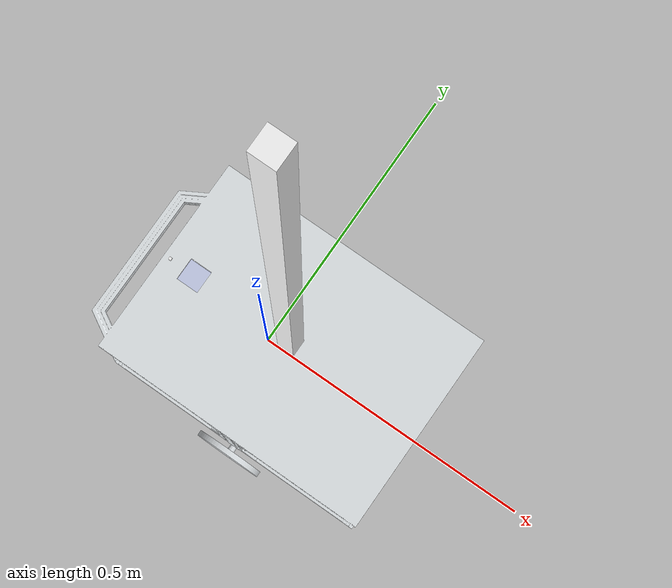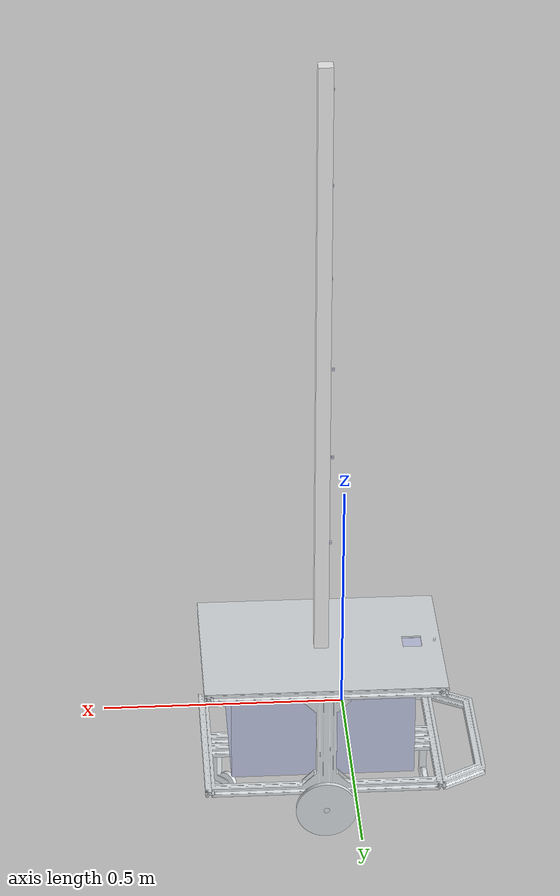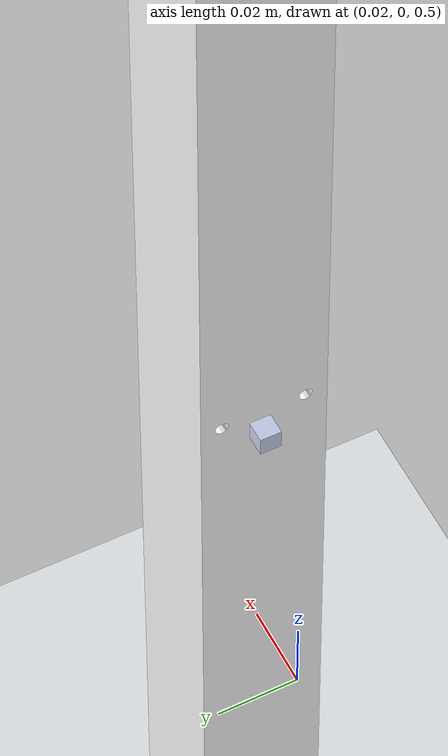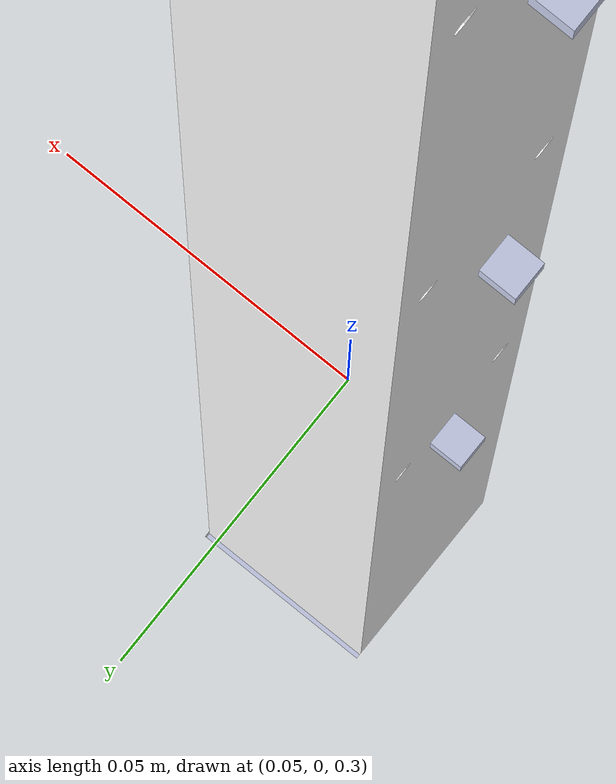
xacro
<?xml version='1.0'?>

<robot name="GazeboV1" xmlns:xacro="http://www.ros.org/wiki/xacro" >

  <xacro:include filename="$(find GazeboV0)/urdf/UVbot.gazebo" />
  <xacro:include filename="$(find GazeboV0)/urdf/macros.xacro" />
  <xacro:include filename="$(find GazeboV0)/urdf/materials.xacro" />

  <link name="Chassis">
    <inertial>
      <origin
        xyz="-0.033283 0.045332 0.0039241"
        rpy="0 0 0" />
      <mass
        value="4.7117" />
      <inertia
        ixx="0.13123"
        ixy="0.0096599"
        ixz="-5.9961E-08"
        iyy="0.19541"
        iyz="-6.4526E-06"
        izz="0.18347" />
    </inertial>
    <visual>
      <origin
        xyz="0 0 0"
        rpy="0 0 3.1415" />
      <geometry>
        <mesh
          filename="package://GazeboV0/meshes/Chassis.STL" />
      </geometry>
      <material
        name="">
        <color
          rgba="0.89804 0.91765 0.92941 1" />
      </material>
    </visual>
    <collision>
      <origin
        xyz="0 0 0"
        rpy="0 0 0" />
      <geometry>
        <mesh
          filename="package://GazeboV0/meshes/Chassis.STL" />
      </geometry>
    </collision>
  </link>

  <link name="RightWheel">
    <inertial>
      <origin
        xyz="-5.5511E-17 -9.7145E-17 0.0051"
        rpy="0 0 0" />
      <mass
        value="0.33861" />
      <inertia
        ixx="0.00034758"
        ixy="-1.3553E-20"
        ixz="-3.2653E-18"
        iyy="0.00034758"
        iyz="-7.9542E-18"
        izz="0.00068952" />
    </inertial>
    <visual>
      <origin
        xyz="0 0 0"
        rpy="0 0 0" />
      <geometry>
        <mesh
          filename="package://GazeboV0/meshes/RightWheel.STL" />
      </geometry>
      <material
        name="">
        <color
          rgba="0.89804 0.91765 0.92941 1" />
      </material>
    </visual>
    <collision>
      <origin
        xyz="0 0 0"
        rpy="0 0 0" />
      <geometry>
        <mesh
          filename="package://GazeboV0/meshes/RightWheel.STL" />
      </geometry>
    </collision>
  </link>

  <joint name="RightRevolute" type="continuous">
    <origin
      xyz="0.046488 -0.18625 -0.13626"
      rpy="1.5708 -0.54973 0" />
    <parent
      link="Chassis" />
    <child
      link="RightWheel" />
    <axis
      xyz="0 0 1" />
    <dynamics
      damping="0.01"
      friction="0.01" />
  </joint>

  <link name="LeftWheel">
    <inertial>
      <origin
        xyz="-6.9389E-17 1.1102E-16 -0.0051"
        rpy="0 0 0" />
      <mass
        value="0.33861" />
      <inertia
        ixx="0.00034758"
        ixy="-2.7105E-20"
        ixz="4.7021E-18"
        iyy="0.00034758"
        iyz="-7.2526E-18"
        izz="0.00068952" />
    </inertial>
    <visual>
      <origin
        xyz="0 0 0"
        rpy="0 0 0" />
      <geometry>
        <mesh
          filename="package://GazeboV0/meshes/LeftWheel.STL" />
      </geometry>
      <material
        name="">
        <color
          rgba="0.89804 0.91765 0.92941 1" />
      </material>
    </visual>
    <collision>
      <origin
        xyz="0 0 0"
        rpy="0 0 0" />
      <geometry>
        <mesh
          filename="package://GazeboV0/meshes/LeftWheel.STL" />
      </geometry>
    </collision>
  </link>

  <joint name="LeftRevolute" type="continuous">
    <origin
      xyz="0.046488 0.19325 -0.13626"
      rpy="1.5708 0.4158 0" />
    <parent
      link="Chassis" />
    <child
      link="LeftWheel" />
    <axis
      xyz="0 0 1" />
    <dynamics
      damping="0.01"
      friction="0.01" />
  </joint>

  <link
    name="FrontCastor">
    <inertial>
      <origin
        xyz="0.00303144893180381 0.0345627416364458 -2.77555756156289E-16"
        rpy="0 0 0" />
      <mass
        value="0.0671525104446695" />
      <inertia
        ixx="4.49259698602968E-05"
        ixy="-6.70501812216222E-06"
        ixz="6.63862072410558E-20"
        iyy="9.61913985679314E-06"
        iyz="3.54456818646323E-19"
        izz="4.97992078191437E-05" />
    </inertial>
    <visual>
      <origin
        xyz="0 0 0"
        rpy="0 0 0" />
      <geometry>
        <mesh
          filename="package://GazeboV0/meshes/FrontCastor.STL" />
      </geometry>
      <material
        name="">
        <color
          rgba="0.898039215686275 0.917647058823529 0.929411764705882 1" />
      </material>
    </visual>
    <collision>
      <origin
        xyz="0 0 0"
        rpy="0 0 0" />
      <geometry>
        <mesh
          filename="package://GazeboV0/meshes/FrontCastor.STL" />
      </geometry>
    </collision>
  </link>

  <joint name="FrontCastorRevolute" type="continuous">
    <origin
      xyz="-0.17264 0.0000 -0.11126"
      rpy="-1.5708 0 1.5956" />
    <parent
      link="Chassis" />
    <child
      link="FrontCastor" />
    <axis
      xyz="0 1 0" />
    <dynamics
      damping="0.01"
      friction="0.01" />
  </joint>

  <link name="FrontCastorWheel">
    <inertial>
      <origin
        xyz="-2.77555756156289E-17 0 -6.66133814775094E-16"
        rpy="0 0 0" />
      <mass
        value="0.0317645176567402" />
      <inertia
        ixx="3.91504603938205E-06"
        ixy="8.470329472543E-22"
        ixz="2.13743470283702E-21"
        iyy="3.91504603938204E-06"
        iyz="-3.61974236053205E-21"
        izz="7.40108172021949E-06" />
    </inertial>
    <visual>
      <origin
        xyz="0 0 0"
        rpy="0 0 0" />
      <geometry>
        <mesh
          filename="package://GazeboV0/meshes/FrontCastorWheel.STL" />
      </geometry>
      <material
        name="">
        <color
          rgba="0.898039215686275 0.917647058823529 0.929411764705882 1" />
      </material>
    </visual>
    <collision>
      <origin
        xyz="0 0 0"
        rpy="0 0 0" />
      <geometry>
        <mesh
          filename="package://GazeboV0/meshes/FrontCastorWheel.STL" />
      </geometry>
    </collision>
  </link>

  <joint
    name="FrontCastorWheelRevolute"
    type="continuous">
    <origin
      xyz="0.032 0.0675 0"
      rpy="0 0 1.984" />
    <parent
      link="FrontCastor" />
    <child
      link="FrontCastorWheel" />
    <axis
      xyz="0 0 1" />
    <dynamics
      damping="0.01"
      friction="0.01" />
  </joint>

  <link
    name="RearCastor">
    <inertial>
      <origin
        xyz="0.0030314489318026 0.0345627416364456 -1.69309011255336E-15"
        rpy="0 0 0" />
      <mass
        value="0.0671525104446697" />
      <inertia
        ixx="4.49259698602974E-05"
        ixy="-6.70501812216103E-06"
        ixz="3.16790322273108E-19"
        iyy="9.61913985679272E-06"
        iyz="1.94228764612286E-18"
        izz="4.97992078191438E-05" />
    </inertial>
    <visual>
      <origin
        xyz="0 0 0"
        rpy="0 0 0" />
      <geometry>
        <mesh
          filename="package://GazeboV0/meshes/RearCastor.STL" />
      </geometry>
      <material
        name="">
        <color
          rgba="0.898039215686275 0.917647058823529 0.929411764705882 1" />
      </material>
    </visual>
    <collision>
      <origin
        xyz="0 0 0"
        rpy="0 0 0" />
      <geometry>
        <mesh
          filename="package://GazeboV0/meshes/RearCastor.STL" />
      </geometry>
    </collision>
  </link>

  <joint
    name="RearCastorRevolute"
    type="continuous">
    <origin
      xyz="0.26561 0.0 -0.11126"
      rpy="-1.5708 0 2.3562" />
    <parent
      link="Chassis" />
    <child
      link="RearCastor" />
    <axis
      xyz="0 1 0" />
    <dynamics
      damping="0.01"
      friction="0.01" />
  </joint>
  <link
    name="RearCastorWheel">
    <inertial>
      <origin
        xyz="0 -2.77555756156289E-17 5.55111512312578E-17"
        rpy="0 0 0" />
      <mass
        value="0.0317645176567403" />
      <inertia
        ixx="3.91504603938205E-06"
        ixy="1.05879118406788E-22"
        ixz="5.18807680193259E-21"
        iyy="3.91504603938205E-06"
        iyz="-3.70576914423756E-22"
        izz="7.4010817202195E-06" />
    </inertial>
    <visual>
      <origin
        xyz="0 0 0"
        rpy="0 0 0" />
      <geometry>
        <mesh
          filename="package://GazeboV0/meshes/RearCastorWheel.STL" />
      </geometry>
      <material
        name="">
        <color
          rgba="0.898039215686275 0.917647058823529 0.929411764705882 1" />
      </material>
    </visual>
    <collision>
      <origin
        xyz="0 0 0"
        rpy="0 0 0" />
      <geometry>
        <mesh
          filename="package://GazeboV0/meshes/RearCastorWheel.STL" />
      </geometry>
    </collision>
  </link>

  <joint
    name="RearCastorWheelRevolute"
    type="continuous">
    <origin
      xyz="0.032 0.0675 0"
      rpy="0 0 0.34434" />
    <parent
      link="RearCastor" />
    <child
      link="RearCastorWheel" />
    <axis
      xyz="0 0 1" />
    <dynamics
      damping="0.01"
      friction="0.01" />
  </joint>

  <link
    name="Battery">
    <inertial>
      <origin
        xyz="9.99200722162641E-16 0.0925 -3.25260651745651E-17"
        rpy="0 0 0" />
      <mass
        value="17.512433" />
      <inertia
        ixx="0.172679886227083"
        ixy="1.71151070449169E-15"
        ixz="-3.13751844850625E-16"
        iyy="0.333465911708333"
        iyz="-2.08611223132114E-17"
        izz="0.260679862052083" />
    </inertial>
    <visual>
      <origin
        xyz="0 0 0"
        rpy="0 0 0" />
      <geometry>
        <mesh
          filename="package://GazeboV0/meshes/Battery.STL" />
      </geometry>
      <material
        name="">
        <color
          rgba="0.792156862745098 0.819607843137255 0.933333333333333 1" />
      </material>
    </visual>
    <collision>
      <origin
        xyz="0 0 0"
        rpy="0 0 0" />
      <geometry>
        <mesh
          filename="package://GazeboV0/meshes/Battery.STL" />
      </geometry>
    </collision>
  </link>

  <joint
    name="Fixed_Chassis_Battery"
    type="fixed">
    <origin
      xyz="0.050488 -0.0036552 0.097745"
      rpy="-1.5708 0 0" />
    <parent
      link="Chassis" />
    <child
      link="Battery" />
    <axis
      xyz="0 0 0" />
  </joint>

  <link
    name="LiDAR">
    <inertial>
      <origin
        xyz="-2.77555756156289E-17 0.02 -8.67361737988404E-19"
        rpy="0 0 0" />
      <mass
        value="0.064" />
      <inertia
        ixx="1.70666666666667E-05"
        ixy="-9.02381468159686E-22"
        ixz="2.02492825747876E-21"
        iyy="1.70666666666667E-05"
        iyz="7.86733236427898E-22"
        izz="1.70666666666667E-05" />
    </inertial>
    <visual>
      <origin
        xyz="0 0 0"
        rpy="0 0 0" />
      <geometry>
        <mesh
          filename="package://GazeboV0/meshes/LiDAR.STL" />
      </geometry>
      <material
        name="">
        <color
          rgba="0.792156862745098 0.819607843137255 0.933333333333333 1" />
      </material>
    </visual>
    <collision>
      <origin
        xyz="0 0 0"
        rpy="0 0 0" />
      <geometry>
        <mesh
          filename="package://GazeboV0/meshes/LiDAR.STL" />
      </geometry>
    </collision>
  </link>

  <joint
    name="Fixed_Battery_LiDAR"
    type="fixed">
    <origin
      xyz="-0.14351 0.0235 0.120"
      rpy="3.1415 0 0" />
    <parent
      link="Chassis" />
    <child
      link="LiDAR" />
    <axis
      xyz="0 0 0" />
  </joint>

  <link
    name="WoodRod">
    <inertial>
      <origin
        xyz="-2.269E-15 -5.1576E-06 0.65004"
        rpy="0 0 0" />
      <mass
        value="0.70171" />
      <inertia
        ixx="0.098881"
        ixy="2.7829E-21"
        ixz="3.4485E-16"
        iyy="0.098881"
        iyz="-3.6206E-07"
        izz="0.00010523" />
    </inertial>
    <visual>
      <origin
        xyz="0 0 0"
        rpy="0 0 0" />
      <geometry>
        <mesh
          filename="package://GazeboV0/meshes/WoodRod.STL" />
      </geometry>
      <material
        name="">
        <color
          rgba="1 1 1 1" />
      </material>
    </visual>
    <collision>
      <origin
        xyz="0 0 0"
        rpy="0 0 0" />
      <geometry>
        <mesh
          filename="package://GazeboV0/meshes/WoodRod.STL" />
      </geometry>
    </collision>
  </link>

  <joint
    name="Fixed_Chassis_WoodRod"
    type="fixed">
    <origin
      xyz="0.046488 0.0029552 1.4407"
      rpy="3.1416 0 4.712" />
    <parent
      link="Chassis" />
    <child
      link="WoodRod" />
    <axis
      xyz="0 0 0" />
  </joint>
  <link
    name="TBS1">
    <inertial>
      <origin
        xyz="-3.3827E-17 -5.5511E-17 0.00275"
        rpy="0 0 0" />
      <mass
        value="0.0017387" />
      <inertia
        ixx="2.8124E-08"
        ixy="-5.1483E-22"
        ixz="-1.9596E-23"
        iyy="9.5796E-08"
        iyz="3.7349E-24"
        izz="1.1515E-07" />
    </inertial>
    <visual>
      <origin
        xyz="0 0 0"
        rpy="0 0 0" />
      <geometry>
        <mesh
          filename="package://GazeboV0/meshes/Camera.STL" />
      </geometry>
      <material
        name="">
        <color
          rgba="0.79216 0.81961 0.93333 1" />
      </material>
    </visual>
    <collision>
      <origin
        xyz="0 0 0"
        rpy="0 0 0" />
      <geometry>
        <mesh
          filename="package://GazeboV0/meshes/Camera.STL" />
      </geometry>
    </collision>
  </link>

  <joint
    name="Fixed_WoodRod_TBS1"
    type="fixed">
    <origin
      xyz="0 0.018 1.05"
      rpy="3.1416 3.1416 4.7123" />
    <parent
      link="WoodRod" />
    <child
      link="TBS1" />
    <axis
      xyz="0 0 0" />
  </joint>
  <link
    name="TBS2">
    <inertial>
      <origin
        xyz="-6.07153216591882E-18 0 0.00275"
        rpy="0 0 0" />
      <mass
        value="0.00173867551882196" />
      <inertia
        ixx="2.81242393072005E-08"
        ixy="3.56393864890531E-23"
        ixz="-3.193621595985E-23"
        iyy="9.57958648484739E-08"
        iyz="1.90730170408549E-23"
        izz="1.1515428174828E-07" />
    </inertial>
    <visual>
      <origin
        xyz="0 0 0"
        rpy="0 0 0" />
      <geometry>
        <mesh
          filename="package://GazeboV0/meshes/Camera.STL" />
      </geometry>
      <material
        name="">
        <color
          rgba="0.792156862745098 0.819607843137255 0.933333333333333 1" />
      </material>
    </visual>
    <collision>
      <origin
        xyz="0 0 0"
        rpy="0 0 0" />
      <geometry>
        <mesh
          filename="package://GazeboV0/meshes/Camera.STL" />
      </geometry>
    </collision>
  </link>

  <joint
    name="Fixed_WoodRod_TBS2"
    type="fixed">
    <origin
      xyz="0 0.0205 0.85"
      rpy="3.1416 3.1416 4.7123" />
    <parent
      link="WoodRod" />
    <child
      link="TBS2" />
    <axis
      xyz="0 0 0" />
  </joint>

  <link
    name="TBS3">
    <inertial>
      <origin
        xyz="1.7347E-18 -4.0978E-11 0.00275"
        rpy="0 0 0" />
      <mass
        value="0.0017387" />
      <inertia
        ixx="2.8124E-08"
        ixy="1.5023E-22"
        ixz="-3.1001E-23"
        iyy="9.5796E-08"
        iyz="-2.8846E-16"
        izz="1.1515E-07" />
    </inertial>
    <visual>
      <origin
        xyz="0 0 0"
        rpy="0 0 0" />
      <geometry>
        <mesh
          filename="package://GazeboV0/meshes/Camera.STL" />
      </geometry>
      <material
        name="">
        <color
          rgba="0.79216 0.81961 0.93333 1" />
      </material>
    </visual>
    <collision>
      <origin
        xyz="0 0 0"
        rpy="0 0 0" />
      <geometry>
        <mesh
          filename="package://GazeboV0/meshes/Camera.STL" />
      </geometry>
    </collision>
  </link>

  <joint
    name="Fixed_WoodRod_TBS3"
    type="fixed">
    <origin
      xyz="0 0.0205 0.65"
      rpy="3.1416 3.1416 4.7123" />
    <parent
      link="WoodRod" />
    <child
      link="TBS3" />
    <axis
      xyz="0 0 0" />
  </joint>

  <link
    name="TBS4">
    <inertial>
      <origin
        xyz="0 1.1102E-16 0.00275"
        rpy="0 0 0" />
      <mass
        value="0.0017387" />
      <inertia
        ixx="2.8124E-08"
        ixy="-1.5797E-22"
        ixz="1.2747E-23"
        iyy="9.5796E-08"
        iyz="1.4879E-24"
        izz="1.1515E-07" />
    </inertial>
    <visual>
      <origin
        xyz="0 0 0"
        rpy="0 0 0" />
      <geometry>
        <mesh
          filename="package://GazeboV0/meshes/Camera.STL" />
      </geometry>
      <material
        name="">
        <color
          rgba="0.79216 0.81961 0.93333 1" />
      </material>
    </visual>
    <collision>
      <origin
        xyz="0 0 0"
        rpy="0 0 0" />
      <geometry>
        <mesh
          filename="package://GazeboV0/meshes/Camera.STL" />
      </geometry>
    </collision>
  </link>

  <joint
    name="Fixed_WoodRod_TBS4"
    type="fixed">
    <origin
      xyz="0 0.015 0.45"
      rpy="3.1416 3.1416 4.7123" />
    <parent
      link="WoodRod" />
    <child
      link="TBS4" />
    <axis
      xyz="0 0 0" />
  </joint>

  <link
    name="TBS5">
    <inertial>
      <origin
        xyz="-1.4745E-17 0 0.00275"
        rpy="0 0 0" />
      <mass
        value="0.0017387" />
      <inertia
        ixx="2.8124E-08"
        ixy="1.7318E-22"
        ixz="1.5286E-23"
        iyy="9.5796E-08"
        iyz="1.526E-24"
        izz="1.1515E-07" />
    </inertial>
    <visual>
      <origin
        xyz="0 0 0"
        rpy="0 0 0" />
      <geometry>
        <mesh
          filename="package://GazeboV0/meshes/Camera.STL" />
      </geometry>
      <material
        name="">
        <color
          rgba="0.79216 0.81961 0.93333 1" />
      </material>
    </visual>
    <collision>
      <origin
        xyz="0 0 0"
        rpy="0 0 0" />
      <geometry>
        <mesh
          filename="package://GazeboV0/meshes/Camera.STL" />
      </geometry>
    </collision>
  </link>

  <joint
    name="Fixed_WoodRod_TBS5"
    type="fixed">
    <origin
      xyz="0 0.015 0.25"
      rpy="3.1416 3.1416 4.7123" />
    <parent
      link="WoodRod" />
    <child
      link="TBS5" />
    <axis
      xyz="0 0 0" />
  </joint>

  <link
    name="TBS6">
    <inertial>
      <origin
        xyz="8.67361737988404E-19 2.22044604925031E-16 0.00275"
        rpy="0 0 0" />
      <mass
        value="0.00173867551882195" />
      <inertia
        ixx="2.81242393072E-08"
        ixy="-1.0044464171169E-15"
        ixz="1.23694375135784E-23"
        iyy="9.57958648484735E-08"
        iyz="1.81377746749025E-24"
        izz="1.1515428174828E-07" />
    </inertial>
    <visual>
      <origin
        xyz="0 0 0"
        rpy="0 0 0" />
      <geometry>
        <mesh
          filename="package://GazeboV0/meshes/Camera.STL" />
      </geometry>
      <material
        name="">
        <color
          rgba="0.792156862745098 0.819607843137255 0.933333333333333 1" />
      </material>
    </visual>
    <collision>
      <origin
        xyz="0 0 0"
        rpy="0 0 0" />
      <geometry>
        <mesh
          filename="package://GazeboV0/meshes/Camera.STL" />
      </geometry>
    </collision>
  </link>
  <joint
    name="Fixed_WoodRod_TBS6"
    type="fixed">
    <origin
      xyz="0 0.015 0.0499999999999998"
      rpy="3.1416 3.1416 4.7123" />
    <parent
      link="WoodRod" />
    <child
      link="TBS6" />
    <axis
      xyz="0 0 0" />
  </joint>

  <link
    name="Camera">
    <inertial>
      <origin
        xyz="0 0 0"
        rpy="0 0 0" />
      <mass
        value="0" />
      <inertia
        ixx="0"
        ixy="0"
        ixz="0"
        iyy="0"
        iyz="0"
        izz="0" />
    </inertial>
    <visual>
      <origin
        xyz="0 0 0"
        rpy="0 0 0" />
      <geometry>
        <mesh
          filename="package://GazeboV0/meshes/Camera.STL" />
      </geometry>
      <material
        name="">
        <color
          rgba="1 1 1 1" />
      </material>
    </visual>
    <collision>
      <origin
        xyz="0 0 0"
        rpy="0 0 0" />
      <geometry>
        <mesh
          filename="package://GazeboV0/meshes/Camera.STL" />
      </geometry>
    </collision>
  </link>

  <joint
    name="Fixed_Chassis_Camera"
    type="fixed">
    <origin
      xyz="-0.190512081352508 0.00645522999165892 0.147244672138509"
      rpy="0 0 3.1415" />
    <parent
      link="Chassis" />
    <child
      link="Camera" />
    <axis
      xyz="0 0 0" />
  </joint>

  <link
    name="TBS7">
    <inertial>
      <origin
        xyz="0 0 0"
        rpy="0 0 0" />
      <mass
        value="0" />
      <inertia
        ixx="0"
        ixy="0"
        ixz="0"
        iyy="0"
        iyz="0"
        izz="0" />
    </inertial>
    <visual>
      <origin
        xyz="0 0 0"
        rpy="0 0 0" />
      <geometry>
        <mesh
          filename="package://GazeboV0/meshes/Camera.STL" />
      </geometry>
      <material
        name="">
        <color
          rgba="1 1 1 1" />
      </material>
    </visual>
    <collision>
      <origin
        xyz="0 0 0"
        rpy="0 0 0" />
      <geometry>
        <mesh
          filename="package://GazeboV0/meshes/Camera.STL" />
      </geometry>
    </collision>
  </link>

  <joint
    name="Fixed_Battery_TBS7"
    type="fixed">
    <origin
      xyz="-0.192112081352508 0.00845522999165892 0.12"
      rpy="0 0 3.1415" />
    <parent
      link="Battery" />
    <child
      link="TBS7" />
    <axis
      xyz="0 0 0" />
  </joint>

  <link
    name="TBS8">
    <inertial>
      <origin
        xyz="0 0 0"
        rpy="0 0 0" />
      <mass
        value="0" />
      <inertia
        ixx="0"
        ixy="0"
        ixz="0"
        iyy="0"
        iyz="0"
        izz="0" />
    </inertial>
    <visual>
      <origin
        xyz="0 0 0"
        rpy="0 0 0" />
      <geometry>
        <mesh
          filename="package://GazeboV0/meshes/Camera.STL" />
      </geometry>
      <material
        name="">
        <color
          rgba="1 1 1 1" />
      </material>
    </visual>
    <collision>
      <origin
        xyz="0 0 0"
        rpy="0 0 0" />
      <geometry>
        <mesh
          filename="package://GazeboV0/meshes/Camera.STL" />
      </geometry>
    </collision>
  </link>

  <joint
    name="Fixed_Battery_TBS8"
    type="fixed">
    <origin
      xyz="-0.192112081352508 0.00845522999165892 -0.12"
      rpy="0 0 3.1415" />
    <parent
      link="Battery" />
    <child
      link="TBS8" />
    <axis
      xyz="0 0 0" />
  </joint>

</robot>
